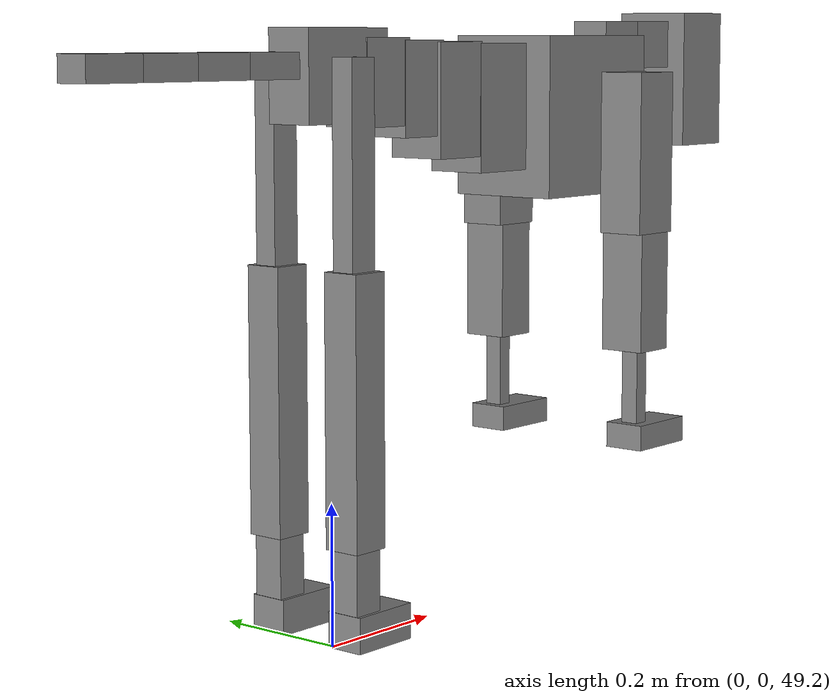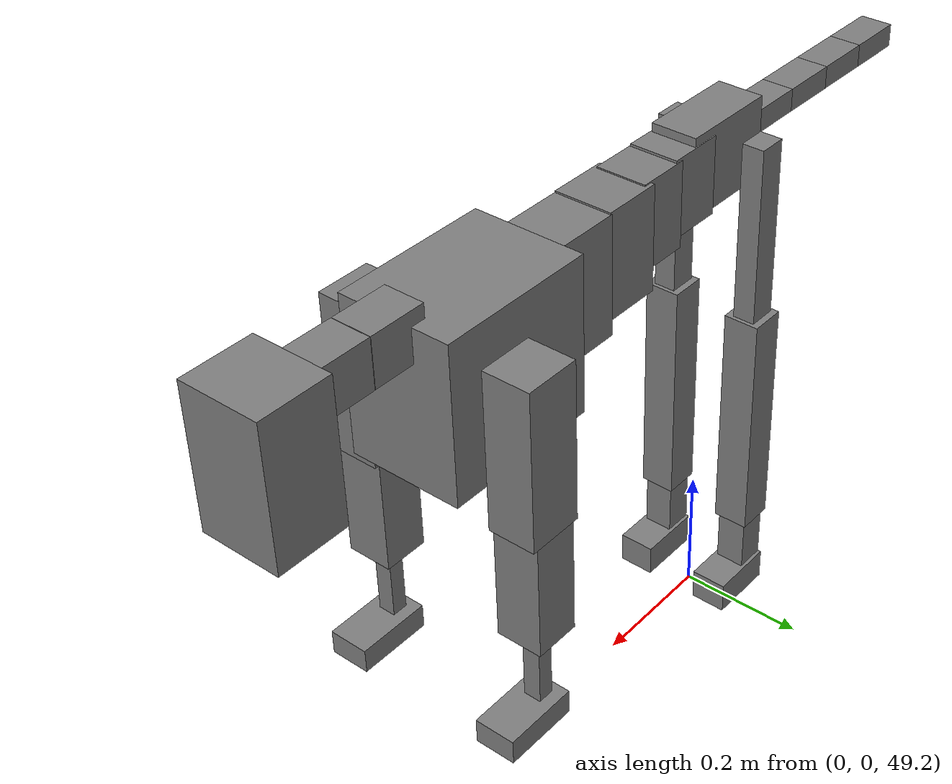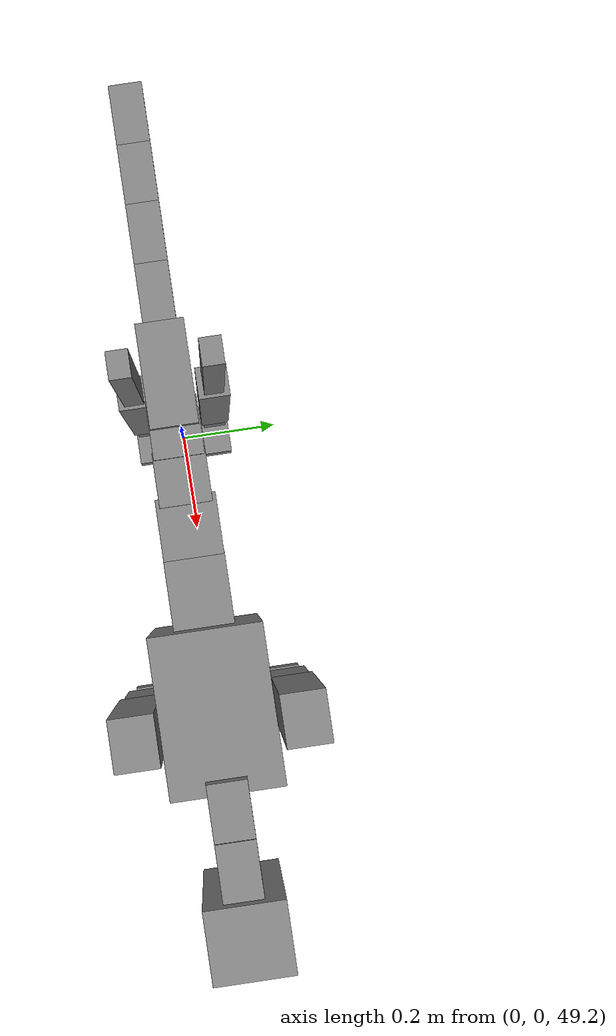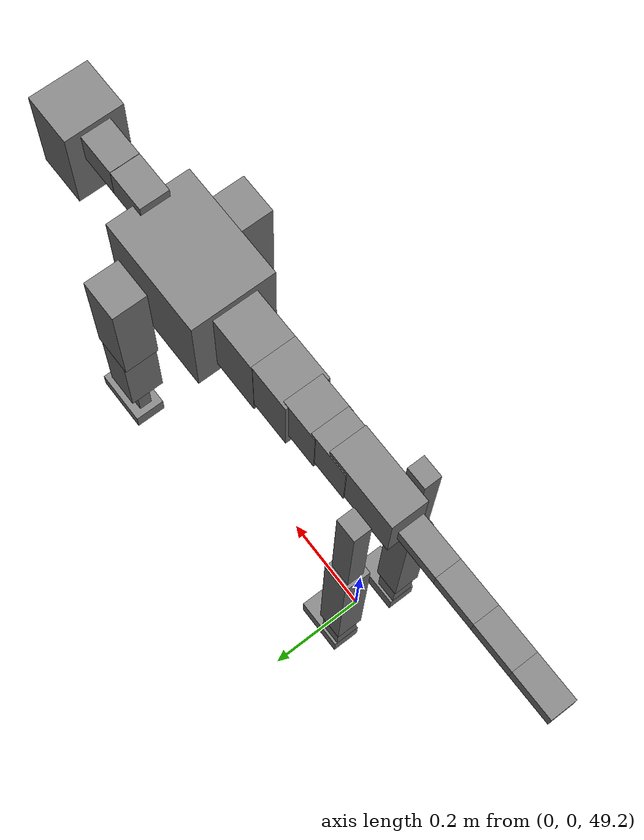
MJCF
<mujoco model="dog">

    <default>
        <joint armature="0.02" stiffness="1" damping="0.2" limited="true"/>
        <geom condim="3" friction="1 0.05 0.05" margin="0.01"/>
        <motor ctrllimited="true" ctrlrange="-1.0 1.0" forcelimited="true" gear="50"/>
    </default>

    <compiler inertiafromgeom="true" angle="radian"/>

    <option timestep="0.016" iterations="50" tolerance="1e-10" solver="Newton" jacobian="dense" cone="pyramidal"/>

    <size nconmax="20000" njmax="60000" nstack="5000000"/>
    <visual>
        <map force="0.1" zfar="30"/>
        <rgba haze="0.15 0.25 0.35 1"/>
        <quality shadowsize="2048"/>
        <global offwidth="800" offheight="800"/>
    </visual>

    <asset>
        <texture type="skybox" builtin="gradient" rgb1="0.3 0.5 0.7" rgb2="0 0 0" width="512" height="512"/>
        <texture name="texplane" type="2d" builtin="checker" rgb1=".2 .3 .4" rgb2=".1 0.15 0.2" width="512" height="512"
                 mark="cross" markrgb=".8 .8 .8"/>
        <texture name="texgeom" type="cube" builtin="flat" mark="cross" width="127" height="1278" rgb1="0.8 0.6 0.4"
                 rgb2="0.8 0.6 0.4" markrgb="1 1 1" random="0.01"/>

        <material name="matplane" reflectance="0.3" texture="texplane" texrepeat="1 1" texuniform="true"/>
        <material name="matgeom" texture="texgeom" texuniform="true" rgba="0.8 0.6 .4 1"/>
    </asset>

    <worldbody>
        <geom name="floor" pos="0 0 0" size="0 0 .25" type="plane" material="matplane" condim="3"/>

        <light directional="false" diffuse=".2 .2 .2" specular="0 0 0" pos="0 0 5" dir="0 0 -1" castshadow="false"/>
        <light mode="targetbodycom" target="torso" directional="false" diffuse=".8 .8 .8" specular="0.3 0.3 0.3"
               pos="0 0 4.0" dir="0 0 -1"/>

        <body name="root" pos="0 0 50">
            <freejoint name="root_1"/>
            <geom type="box" pos="0 0 -0.02" size="0.0774  0.0358  0.063" density="2030"/>

            <body name="spine1" pos="0.054 0 0">
                <joint name="spine1_y" axis="0 1 0" range="0 0.7" limited="true"/>
                <geom type="box" pos="0.02375 0 -0.03" size="0.04375  0.0375  0.05985" density="2030"/>

                <body name="spine2" pos="0.0612 0 0">
                    <joint name="spine2_y" axis="0 1 0" range="-0.15 0.15" limited="true"/>
                    <geom type="box" pos="0.03555  0  -0.04" size="0.04055  0.039  0.06615" density="2030"/>

                    <body name="spine3" pos="0.0730 0 0">
                        <joint name="spine3_y" axis="0 1 0" range="-0.15 0.15" limited="true"/>
                        <geom type="box" pos="0.03555  0  -0.057" size="0.04555  0.0445  0.081" density="2030"/>

                        <body name="spine4" pos="0.0780 0 0">
                            <joint name="spine4_y" axis="0 1 0" range="-0.15 0.15" limited="true"/>
                            <geom type="box" pos="0.05265  0  -0.07" size="0.05265  0.045  0.09135" density="2030"/>

                            <body name="torso" pos="0.1082 0 0">
                                <joint name="torso_y" axis="0 1 0" range="-0.15 0.15" limited="true"/>
                                <geom type="box" pos="0.11925  0  -0.085" size="0.11925  0.085  0.11745"
                                      density="2030"/>

                                <body name="neck1" pos="0.2160  0   0.0180">
                                    <joint name="neck1_y" axis="0 1 0" range="-1.2  -1" limited="true"/>
                                    <geom type="box" pos="0.0423  0  0" size="0.0423  0.03  0.036" density="2325"/>

                                    <body name="neck2" pos="0.0853  0  0">
                                        <joint name="neck2_y" axis="0 1 0" range="0.1  0" limited="true"/>
                                        <geom type="box" pos="0.0423  0  0" size="0.0423  0.03  0.036" density="2325"/>

                                        <body name="head" pos="0.0853  0  0">
                                            <joint name="head_y" axis="0 1 0" range="-0.3  -0.2" limited="true"/>
                                            <geom type="box" pos="0.0531  0  -0.055" size="0.0531  0.06  0.1044"
                                                  density="4030"/>

                                        </body>
                                    </body>
                                </body>

                                <body name="front_shoulder" pos="0.156  0   -0.0480">
                                    <joint name="front_shoulder_y" axis="0 1 0" range="-1 1.5" limited="true"/>
                                    <geom type="box" pos="0 0.13 -0.0920" size="0.0412  0.0353  0.1187" density="1158"/>
                                    <geom type="box" pos="0 -0.13 -0.0920" size="0.0412  0.0353  0.1187"
                                          density="1158"/>

                                    <body name="front_elbow" pos="0  0  -0.1841">
                                        <joint name="front_elbow_y" axis="0 1 0" range="-2 0" limited="true"/>
                                        <geom type="box" pos="0 0.13 -0.1012" size="0.0340  0.0347  0.1012"
                                              density="1081"/>
                                        <geom type="box" pos="0 -0.13 -0.1012" size="0.0340  0.0347  0.1012"
                                              density="1081"/>

                                        <body name="front_wrist" pos="0  0  -0.2024">
                                            <joint name="front_wrist_y" axis="0 1 0" range="-0.2 0" limited="true"/>
                                            <geom type="box" pos="0 0.13 -0.0633" size="0.0120  0.0133  0.0765"
                                                  density="1664"/>
                                            <geom type="box" pos="0 -0.13 -0.0633" size="0.0120  0.0133  0.0765"
                                                  density="1664"/>

                                            <body name="front_finger_end" pos="0  0  -0.1266">
                                                <joint name="front_finger_y" axis="0 1 0" range="-0.4 1"
                                                       limited="true"/>
                                                <geom type="box" pos="0.0309  0.13  -0.0038"
                                                      size="0.0566  0.0309  0.0188" density="1515"/>
                                                <geom type="box" pos="0.0309  -0.13  -0.0038"
                                                      size="0.0566  0.0309  0.0188" density="1515"/>

                                            </body>

                                        </body>
                                    </body>
                                </body>

                            </body>
                        </body>
                    </body>
                </body>
            </body>

            <body name="back_hip" pos="-0.03 0 -0.018">
                <joint name="back_hip_y" axis="0 1 0" range="-1.5 0.3" limited="true"/>
                <geom type="box" pos="0 0.07 -0.1360" size="0.0219  0.0172  0.1588" density="1154"/>
                <geom type="box" pos="0 -0.07 -0.1360" size="0.0219  0.0172  0.1588" density="1154"/>

                <body name="back_knee" pos="0  0  -0.2720">
                    <joint name="back_knee_y" axis="0 1 0" range="0 2.8" limited="true"/>
                    <geom type="box" pos="0 0.07 -0.1700" size="0.0280  0.0276  0.1856" density="1227"/>
                    <geom type="box" pos="0 -0.07 -0.1700" size="0.0280  0.0276  0.1856" density="1227"/>

                    <body name="back_ankle" pos="0  0  -0.3400">
                        <joint name="back_ankle_y" axis="0 1 0" range="-2.2 0" limited="true"/>
                        <geom type="box" pos="0 0.07 -0.0579" size="0.0229  0.0229  0.0691" density="1284"/>
                        <geom type="box" pos="0 -0.07 -0.0579" size="0.0229  0.0229  0.0691" density="1284"/>

                        <body name="back_toe_end" pos="0  0  -0.1158">
                            <joint name="back_toe_y" axis="0 1 0" range="-0.4 1" limited="true"/>
                            <geom type="box" pos="0.0282  0.07  -0.0098" size="0.0517  0.0282  0.0248" density="1515"/>
                            <geom type="box" pos="0.0282  -0.07  -0.0098" size="0.0517  0.0282  0.0248" density="1515"/>

                        </body>
                    </body>
                </body>
            </body>

            <body name="tail1" pos="-0.074 0 -0.006">
                <joint name="tail1_y" axis="0 1 0" range="-0.2 0.2" limited="true"/>
                <geom type="box" pos="-0.0536  0  0" size="0.045  0.025  0.0175" density="1587"/>

                <body name="tail2" pos="-0.09 0 0">
                    <joint name="tail2_y" axis="0 1 0" range="-0.2 0.2" limited="true"/>
                    <geom type="box" pos="-0.0536  0  0" size="0.045  0.025  0.0175" density="1587"/>

                    <body name="tail3" pos="-0.09 0 0">
                        <joint name="tail3_y" axis="0 1 0" range="-0.2 0.2" limited="true"/>
                        <geom type="box" pos="-0.0536  0  0" size="0.045  0.025  0.0175" density="1587"/>

                        <body name="tail4" pos="-0.09 0 0">
                            <joint name="tail4_y" axis="0 1 0" range="-0.2 0.2" limited="true"/>
                            <geom type="box" pos="-0.0536  0  0" size="0.045  0.025  0.0175" density="1587"/>

                        </body>
                    </body>
                </body>
            </body>
        </body>
    </worldbody>

    <actuator>
        <motor joint="spine1_y" forcerange="-150 150     "/>
        <motor joint="spine2_y" forcerange="-150 150     "/>
        <motor joint="spine3_y" forcerange="-150 150     "/>
        <motor joint="spine4_y" forcerange="-150 150     "/>
        <motor joint="torso_y" forcerange="-150 150     "/>
        <motor joint="neck1_y" forcerange="-100 100       "/>
        <motor joint="neck2_y" forcerange="-100 100       "/>
        <motor joint="head_y" forcerange="-150 150       "/>
        <motor joint="front_shoulder_y" forcerange="-151.83 183.17"/>
        <motor joint="front_elbow_y" forcerange="-158.04 194.62"/>
        <motor joint="front_wrist_y" forcerange="-55.39 50.93"/>
        <motor joint="front_finger_y" forcerange="-95.45 29.32"/>
        <motor joint="back_hip_y" forcerange="-215.78 213.31"/>
        <motor joint="back_knee_y" forcerange="-222.96 378.57"/>
        <motor joint="back_angle_y" forcerange="-170.53 96.20"/>
        <motor joint="back_toe_y" forcerange="-95.78 49.80"/>
        <motor joint="tail1_y" forcerange="-50 50     "/>
        <motor joint="tail2_y" forcerange="-50 50     "/>
        <motor joint="tail3_y" forcerange="-50 50     "/>
        <motor joint="tail4_y" forcerange="-50 50     "/>
    </actuator>
</mujoco>
